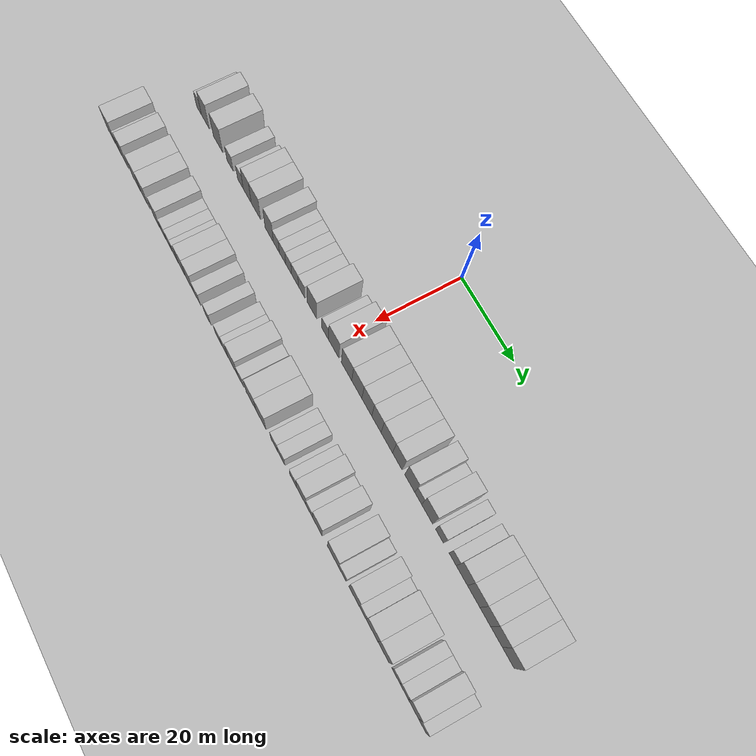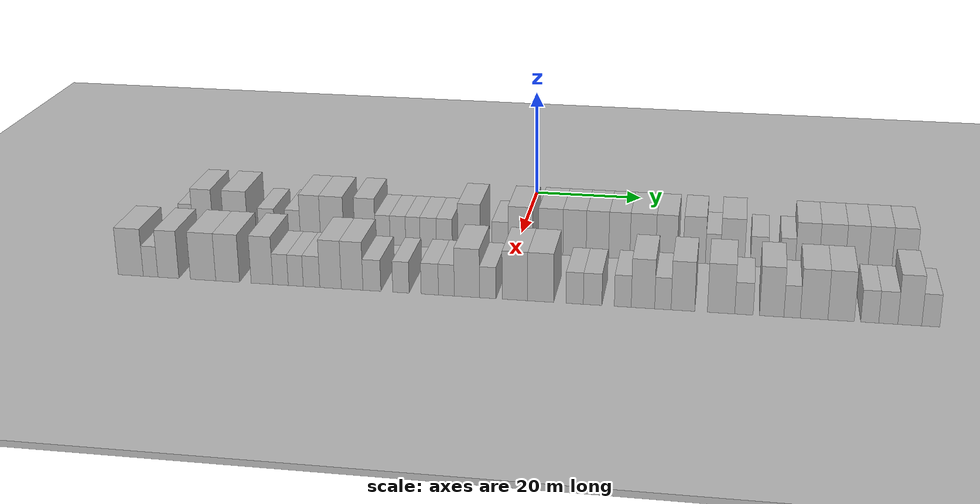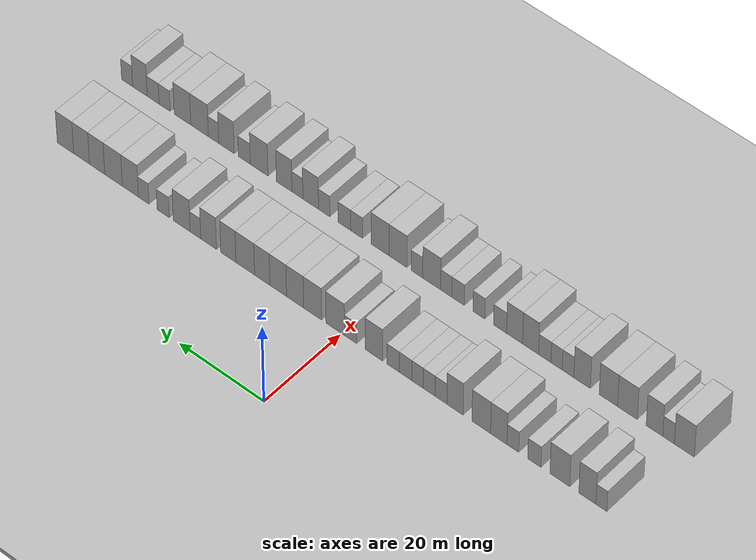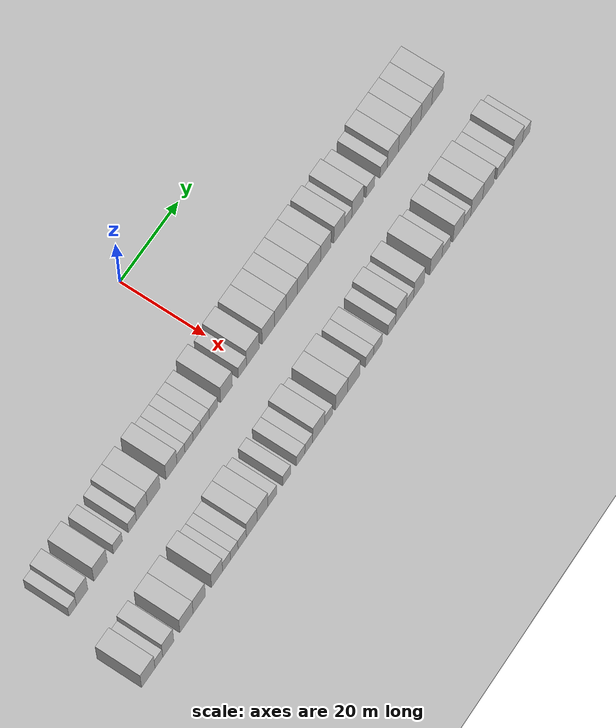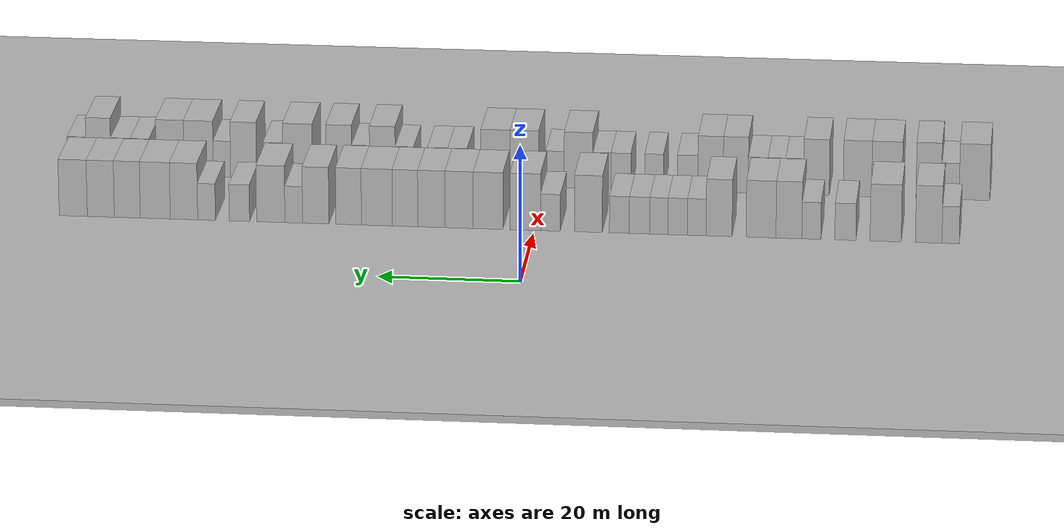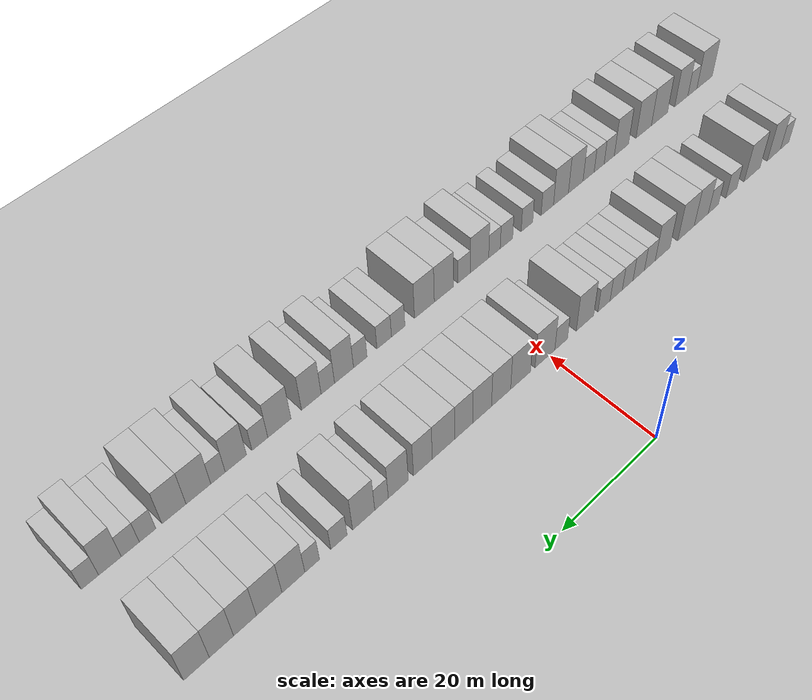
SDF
<sdf version="1.6">
 <world name="default">
  <include><name>ground_plane_1</name><uri>model://HANNAS_ground_plane</uri></include>
  <include>
   <name>ground_plane_2</name>
   <uri>model://HANNAS_ground_plane</uri>
   <pose>100 0 0  0 0 0</pose>
  </include>
  <model name="building_36">
   <static>1</static>
   <pose>25.0000 -59.1891 0 0.000000 0.000000 0.000000</pose>
   <link name="link">
    <pose>0 0 3.00 0 0 0</pose>
    <collision name="collision"><geometry><box><size>10.0000 2.4505 6.0000</size></box></geometry></collision>
    <visual name="visual">
     <cast_shadows>0</cast_shadows>
     <geometry><box><size>10.0000 2.4505 6.0000</size></box></geometry>
     <material>
      <script>
       <uri>model://HANNAS_wall/materials/scripts</uri>
       <uri>model://HANNAS_wall/materials/textures</uri>
       <name>vrc/HANNAS_wall</name>
      </script>
     </material>
    </visual>
   </link>
  </model>
  <model name="building_37">
   <static>1</static>
   <pose>25.0000 -56.0891 0 0.000000 0.000000 0.000000</pose>
   <link name="link">
    <pose>0 0 4.50 0 0 0</pose>
    <collision name="collision"><geometry><box><size>10.0000 3.7496 9.0000</size></box></geometry></collision>
    <visual name="visual">
     <cast_shadows>0</cast_shadows>
     <geometry><box><size>10.0000 3.7496 9.0000</size></box></geometry>
     <material>
      <script>
       <uri>model://HANNAS_wall/materials/scripts</uri>
       <uri>model://HANNAS_wall/materials/textures</uri>
       <name>vrc/HANNAS_wall</name>
      </script>
     </material>
    </visual>
   </link>
  </model>
  <model name="building_38">
   <static>1</static>
   <pose>25.0000 -50.0025 0 0.000000 0.000000 0.000000</pose>
   <link name="link">
    <pose>0 0 4.50 0 0 0</pose>
    <collision name="collision"><geometry><box><size>10.0000 4.4235 9.0000</size></box></geometry></collision>
    <visual name="visual">
     <cast_shadows>0</cast_shadows>
     <geometry><box><size>10.0000 4.4235 9.0000</size></box></geometry>
     <material>
      <script>
       <uri>model://HANNAS_wall/materials/scripts</uri>
       <uri>model://HANNAS_wall/materials/textures</uri>
       <name>vrc/HANNAS_wall</name>
      </script>
     </material>
    </visual>
   </link>
  </model>
  <model name="building_39">
   <static>1</static>
   <pose>25.0000 -44.3011 0 0.000000 0.000000 0.000000</pose>
   <link name="link">
    <pose>0 0 3.00 0 0 0</pose>
    <collision name="collision"><geometry><box><size>10.0000 2.9793 6.0000</size></box></geometry></collision>
    <visual name="visual">
     <cast_shadows>0</cast_shadows>
     <geometry><box><size>10.0000 2.9793 6.0000</size></box></geometry>
     <material>
      <script>
       <uri>model://HANNAS_wall/materials/scripts</uri>
       <uri>model://HANNAS_wall/materials/textures</uri>
       <name>vrc/HANNAS_wall</name>
      </script>
     </material>
    </visual>
   </link>
  </model>
  <model name="building_40">
   <static>1</static>
   <pose>25.0000 -39.4788 0 0.000000 0.000000 0.000000</pose>
   <link name="link">
    <pose>0 0 3.00 0 0 0</pose>
    <collision name="collision"><geometry><box><size>10.0000 2.6652 6.0000</size></box></geometry></collision>
    <visual name="visual">
     <cast_shadows>0</cast_shadows>
     <geometry><box><size>10.0000 2.6652 6.0000</size></box></geometry>
     <material>
      <script>
       <uri>model://HANNAS_wall/materials/scripts</uri>
       <uri>model://HANNAS_wall/materials/textures</uri>
       <name>vrc/HANNAS_wall</name>
      </script>
     </material>
    </visual>
   </link>
  </model>
  <model name="building_41">
   <static>1</static>
   <pose>25.0000 -36.3072 0 0.000000 0.000000 0.000000</pose>
   <link name="link">
    <pose>0 0 4.50 0 0 0</pose>
    <collision name="collision"><geometry><box><size>10.0000 3.6781 9.0000</size></box></geometry></collision>
    <visual name="visual">
     <cast_shadows>0</cast_shadows>
     <geometry><box><size>10.0000 3.6781 9.0000</size></box></geometry>
     <material>
      <script>
       <uri>model://HANNAS_wall/materials/scripts</uri>
       <uri>model://HANNAS_wall/materials/textures</uri>
       <name>vrc/HANNAS_wall</name>
      </script>
     </material>
    </visual>
   </link>
  </model>
  <model name="building_42">
   <static>1</static>
   <pose>25.0000 -32.3538 0 0.000000 0.000000 0.000000</pose>
   <link name="link">
    <pose>0 0 4.50 0 0 0</pose>
    <collision name="collision"><geometry><box><size>10.0000 4.2288 9.0000</size></box></geometry></collision>
    <visual name="visual">
     <cast_shadows>0</cast_shadows>
     <geometry><box><size>10.0000 4.2288 9.0000</size></box></geometry>
     <material>
      <script>
       <uri>model://HANNAS_wall/materials/scripts</uri>
       <uri>model://HANNAS_wall/materials/textures</uri>
       <name>vrc/HANNAS_wall</name>
      </script>
     </material>
    </visual>
   </link>
  </model>
  <model name="building_43">
   <static>1</static>
   <pose>25.0000 -26.3976 0 0.000000 0.000000 0.000000</pose>
   <link name="link">
    <pose>0 0 4.50 0 0 0</pose>
    <collision name="collision"><geometry><box><size>10.0000 3.6835 9.0000</size></box></geometry></collision>
    <visual name="visual">
     <cast_shadows>0</cast_shadows>
     <geometry><box><size>10.0000 3.6835 9.0000</size></box></geometry>
     <material>
      <script>
       <uri>model://HANNAS_wall/materials/scripts</uri>
       <uri>model://HANNAS_wall/materials/textures</uri>
       <name>vrc/HANNAS_wall</name>
      </script>
     </material>
    </visual>
   </link>
  </model>
  <model name="building_44">
   <static>1</static>
   <pose>25.0000 -23.2192 0 0.000000 0.000000 0.000000</pose>
   <link name="link">
    <pose>0 0 3.00 0 0 0</pose>
    <collision name="collision"><geometry><box><size>10.0000 2.6733 6.0000</size></box></geometry></collision>
    <visual name="visual">
     <cast_shadows>0</cast_shadows>
     <geometry><box><size>10.0000 2.6733 6.0000</size></box></geometry>
     <material>
      <script>
       <uri>model://HANNAS_wall/materials/scripts</uri>
       <uri>model://HANNAS_wall/materials/textures</uri>
       <name>vrc/HANNAS_wall</name>
      </script>
     </material>
    </visual>
   </link>
  </model>
  <model name="building_45">
   <static>1</static>
   <pose>25.0000 -20.4922 0 0.000000 0.000000 0.000000</pose>
   <link name="link">
    <pose>0 0 3.00 0 0 0</pose>
    <collision name="collision"><geometry><box><size>10.0000 2.7807 6.0000</size></box></geometry></collision>
    <visual name="visual">
     <cast_shadows>0</cast_shadows>
     <geometry><box><size>10.0000 2.7807 6.0000</size></box></geometry>
     <material>
      <script>
       <uri>model://HANNAS_wall/materials/scripts</uri>
       <uri>model://HANNAS_wall/materials/textures</uri>
       <name>vrc/HANNAS_wall</name>
      </script>
     </material>
    </visual>
   </link>
  </model>
  <model name="building_46">
   <static>1</static>
   <pose>25.0000 -17.8144 0 0.000000 0.000000 0.000000</pose>
   <link name="link">
    <pose>0 0 3.00 0 0 0</pose>
    <collision name="collision"><geometry><box><size>10.0000 2.5750 6.0000</size></box></geometry></collision>
    <visual name="visual">
     <cast_shadows>0</cast_shadows>
     <geometry><box><size>10.0000 2.5750 6.0000</size></box></geometry>
     <material>
      <script>
       <uri>model://HANNAS_wall/materials/scripts</uri>
       <uri>model://HANNAS_wall/materials/textures</uri>
       <name>vrc/HANNAS_wall</name>
      </script>
     </material>
    </visual>
   </link>
  </model>
  <model name="building_47">
   <static>1</static>
   <pose>25.0000 -15.0738 0 0.000000 0.000000 0.000000</pose>
   <link name="link">
    <pose>0 0 3.00 0 0 0</pose>
    <collision name="collision"><geometry><box><size>10.0000 2.9062 6.0000</size></box></geometry></collision>
    <visual name="visual">
     <cast_shadows>0</cast_shadows>
     <geometry><box><size>10.0000 2.9062 6.0000</size></box></geometry>
     <material>
      <script>
       <uri>model://HANNAS_wall/materials/scripts</uri>
       <uri>model://HANNAS_wall/materials/textures</uri>
       <name>vrc/HANNAS_wall</name>
      </script>
     </material>
    </visual>
   </link>
  </model>
  <model name="building_48">
   <static>1</static>
   <pose>25.0000 -12.2017 0 0.000000 0.000000 0.000000</pose>
   <link name="link">
    <pose>0 0 3.00 0 0 0</pose>
    <collision name="collision"><geometry><box><size>10.0000 2.8381 6.0000</size></box></geometry></collision>
    <visual name="visual">
     <cast_shadows>0</cast_shadows>
     <geometry><box><size>10.0000 2.8381 6.0000</size></box></geometry>
     <material>
      <script>
       <uri>model://HANNAS_wall/materials/scripts</uri>
       <uri>model://HANNAS_wall/materials/textures</uri>
       <name>vrc/HANNAS_wall</name>
      </script>
     </material>
    </visual>
   </link>
  </model>
  <model name="building_49">
   <static>1</static>
   <pose>25.0000 -7.7867 0 0.000000 0.000000 0.000000</pose>
   <link name="link">
    <pose>0 0 4.50 0 0 0</pose>
    <collision name="collision"><geometry><box><size>10.0000 3.9918 9.0000</size></box></geometry></collision>
    <visual name="visual">
     <cast_shadows>0</cast_shadows>
     <geometry><box><size>10.0000 3.9918 9.0000</size></box></geometry>
     <material>
      <script>
       <uri>model://HANNAS_wall/materials/scripts</uri>
       <uri>model://HANNAS_wall/materials/textures</uri>
       <name>vrc/HANNAS_wall</name>
      </script>
     </material>
    </visual>
   </link>
  </model>
  <model name="building_50">
   <static>1</static>
   <pose>25.0000 -2.3718 0 0.000000 0.000000 0.000000</pose>
   <link name="link">
    <pose>0 0 3.00 0 0 0</pose>
    <collision name="collision"><geometry><box><size>10.0000 2.8381 6.0000</size></box></geometry></collision>
    <visual name="visual">
     <cast_shadows>0</cast_shadows>
     <geometry><box><size>10.0000 2.8381 6.0000</size></box></geometry>
     <material>
      <script>
       <uri>model://HANNAS_wall/materials/scripts</uri>
       <uri>model://HANNAS_wall/materials/textures</uri>
       <name>vrc/HANNAS_wall</name>
      </script>
     </material>
    </visual>
   </link>
  </model>
  <model name="building_51">
   <static>1</static>
   <pose>25.0000 1.2269 0 0.000000 0.000000 0.000000</pose>
   <link name="link">
    <pose>0 0 4.50 0 0 0</pose>
    <collision name="collision"><geometry><box><size>10.0000 4.3593 9.0000</size></box></geometry></collision>
    <visual name="visual">
     <cast_shadows>0</cast_shadows>
     <geometry><box><size>10.0000 4.3593 9.0000</size></box></geometry>
     <material>
      <script>
       <uri>model://HANNAS_wall/materials/scripts</uri>
       <uri>model://HANNAS_wall/materials/textures</uri>
       <name>vrc/HANNAS_wall</name>
      </script>
     </material>
    </visual>
   </link>
  </model>
  <model name="building_52">
   <static>1</static>
   <pose>25.0000 6.5297 0 0.000000 0.000000 0.000000</pose>
   <link name="link">
    <pose>0 0 4.50 0 0 0</pose>
    <collision name="collision"><geometry><box><size>10.0000 4.2461 9.0000</size></box></geometry></collision>
    <visual name="visual">
     <cast_shadows>0</cast_shadows>
     <geometry><box><size>10.0000 4.2461 9.0000</size></box></geometry>
     <material>
      <script>
       <uri>model://HANNAS_wall/materials/scripts</uri>
       <uri>model://HANNAS_wall/materials/textures</uri>
       <name>vrc/HANNAS_wall</name>
      </script>
     </material>
    </visual>
   </link>
  </model>
  <model name="building_53">
   <static>1</static>
   <pose>25.0000 10.6682 0 0.000000 0.000000 0.000000</pose>
   <link name="link">
    <pose>0 0 4.50 0 0 0</pose>
    <collision name="collision"><geometry><box><size>10.0000 4.0310 9.0000</size></box></geometry></collision>
    <visual name="visual">
     <cast_shadows>0</cast_shadows>
     <geometry><box><size>10.0000 4.0310 9.0000</size></box></geometry>
     <material>
      <script>
       <uri>model://HANNAS_wall/materials/scripts</uri>
       <uri>model://HANNAS_wall/materials/textures</uri>
       <name>vrc/HANNAS_wall</name>
      </script>
     </material>
    </visual>
   </link>
  </model>
  <model name="building_54">
   <static>1</static>
   <pose>25.0000 14.6349 0 0.000000 0.000000 0.000000</pose>
   <link name="link">
    <pose>0 0 4.50 0 0 0</pose>
    <collision name="collision"><geometry><box><size>10.0000 3.9025 9.0000</size></box></geometry></collision>
    <visual name="visual">
     <cast_shadows>0</cast_shadows>
     <geometry><box><size>10.0000 3.9025 9.0000</size></box></geometry>
     <material>
      <script>
       <uri>model://HANNAS_wall/materials/scripts</uri>
       <uri>model://HANNAS_wall/materials/textures</uri>
       <name>vrc/HANNAS_wall</name>
      </script>
     </material>
    </visual>
   </link>
  </model>
  <model name="building_55">
   <static>1</static>
   <pose>25.0000 18.4154 0 0.000000 0.000000 0.000000</pose>
   <link name="link">
    <pose>0 0 4.50 0 0 0</pose>
    <collision name="collision"><geometry><box><size>10.0000 3.6584 9.0000</size></box></geometry></collision>
    <visual name="visual">
     <cast_shadows>0</cast_shadows>
     <geometry><box><size>10.0000 3.6584 9.0000</size></box></geometry>
     <material>
      <script>
       <uri>model://HANNAS_wall/materials/scripts</uri>
       <uri>model://HANNAS_wall/materials/textures</uri>
       <name>vrc/HANNAS_wall</name>
      </script>
     </material>
    </visual>
   </link>
  </model>
  <model name="building_56">
   <static>1</static>
   <pose>25.0000 22.4592 0 0.000000 0.000000 0.000000</pose>
   <link name="link">
    <pose>0 0 4.50 0 0 0</pose>
    <collision name="collision"><geometry><box><size>10.0000 4.4292 9.0000</size></box></geometry></collision>
    <visual name="visual">
     <cast_shadows>0</cast_shadows>
     <geometry><box><size>10.0000 4.4292 9.0000</size></box></geometry>
     <material>
      <script>
       <uri>model://HANNAS_wall/materials/scripts</uri>
       <uri>model://HANNAS_wall/materials/textures</uri>
       <name>vrc/HANNAS_wall</name>
      </script>
     </material>
    </visual>
   </link>
  </model>
  <model name="building_57">
   <static>1</static>
   <pose>25.0000 26.5005 0 0.000000 0.000000 0.000000</pose>
   <link name="link">
    <pose>0 0 4.50 0 0 0</pose>
    <collision name="collision"><geometry><box><size>10.0000 3.6536 9.0000</size></box></geometry></collision>
    <visual name="visual">
     <cast_shadows>0</cast_shadows>
     <geometry><box><size>10.0000 3.6536 9.0000</size></box></geometry>
     <material>
      <script>
       <uri>model://HANNAS_wall/materials/scripts</uri>
       <uri>model://HANNAS_wall/materials/textures</uri>
       <name>vrc/HANNAS_wall</name>
      </script>
     </material>
    </visual>
   </link>
  </model>
  <model name="building_58">
   <static>1</static>
   <pose>25.0000 31.2246 0 0.000000 0.000000 0.000000</pose>
   <link name="link">
    <pose>0 0 4.50 0 0 0</pose>
    <collision name="collision"><geometry><box><size>10.0000 3.7945 9.0000</size></box></geometry></collision>
    <visual name="visual">
     <cast_shadows>0</cast_shadows>
     <geometry><box><size>10.0000 3.7945 9.0000</size></box></geometry>
     <material>
      <script>
       <uri>model://HANNAS_wall/materials/scripts</uri>
       <uri>model://HANNAS_wall/materials/textures</uri>
       <name>vrc/HANNAS_wall</name>
      </script>
     </material>
    </visual>
   </link>
  </model>
  <model name="building_59">
   <static>1</static>
   <pose>25.0000 34.3887 0 0.000000 0.000000 0.000000</pose>
   <link name="link">
    <pose>0 0 3.00 0 0 0</pose>
    <collision name="collision"><geometry><box><size>10.0000 2.5337 6.0000</size></box></geometry></collision>
    <visual name="visual">
     <cast_shadows>0</cast_shadows>
     <geometry><box><size>10.0000 2.5337 6.0000</size></box></geometry>
     <material>
      <script>
       <uri>model://HANNAS_wall/materials/scripts</uri>
       <uri>model://HANNAS_wall/materials/textures</uri>
       <name>vrc/HANNAS_wall</name>
      </script>
     </material>
    </visual>
   </link>
  </model>
  <model name="building_60">
   <static>1</static>
   <pose>25.0000 37.6948 0 0.000000 0.000000 0.000000</pose>
   <link name="link">
    <pose>0 0 4.50 0 0 0</pose>
    <collision name="collision"><geometry><box><size>10.0000 4.0787 9.0000</size></box></geometry></collision>
    <visual name="visual">
     <cast_shadows>0</cast_shadows>
     <geometry><box><size>10.0000 4.0787 9.0000</size></box></geometry>
     <material>
      <script>
       <uri>model://HANNAS_wall/materials/scripts</uri>
       <uri>model://HANNAS_wall/materials/textures</uri>
       <name>vrc/HANNAS_wall</name>
      </script>
     </material>
    </visual>
   </link>
  </model>
  <model name="building_61">
   <static>1</static>
   <pose>25.0000 42.1976 0 0.000000 0.000000 0.000000</pose>
   <link name="link">
    <pose>0 0 3.00 0 0 0</pose>
    <collision name="collision"><geometry><box><size>10.0000 2.9268 6.0000</size></box></geometry></collision>
    <visual name="visual">
     <cast_shadows>0</cast_shadows>
     <geometry><box><size>10.0000 2.9268 6.0000</size></box></geometry>
     <material>
      <script>
       <uri>model://HANNAS_wall/materials/scripts</uri>
       <uri>model://HANNAS_wall/materials/textures</uri>
       <name>vrc/HANNAS_wall</name>
      </script>
     </material>
    </visual>
   </link>
  </model>
  <model name="building_62">
   <static>1</static>
   <pose>25.0000 46.9403 0 0.000000 0.000000 0.000000</pose>
   <link name="link">
    <pose>0 0 3.00 0 0 0</pose>
    <collision name="collision"><geometry><box><size>10.0000 2.5586 6.0000</size></box></geometry></collision>
    <visual name="visual">
     <cast_shadows>0</cast_shadows>
     <geometry><box><size>10.0000 2.5586 6.0000</size></box></geometry>
     <material>
      <script>
       <uri>model://HANNAS_wall/materials/scripts</uri>
       <uri>model://HANNAS_wall/materials/textures</uri>
       <name>vrc/HANNAS_wall</name>
      </script>
     </material>
    </visual>
   </link>
  </model>
  <model name="building_63">
   <static>1</static>
   <pose>25.0000 50.1913 0 0.000000 0.000000 0.000000</pose>
   <link name="link">
    <pose>0 0 4.50 0 0 0</pose>
    <collision name="collision"><geometry><box><size>10.0000 3.9434 9.0000</size></box></geometry></collision>
    <visual name="visual">
     <cast_shadows>0</cast_shadows>
     <geometry><box><size>10.0000 3.9434 9.0000</size></box></geometry>
     <material>
      <script>
       <uri>model://HANNAS_wall/materials/scripts</uri>
       <uri>model://HANNAS_wall/materials/textures</uri>
       <name>vrc/HANNAS_wall</name>
      </script>
     </material>
    </visual>
   </link>
  </model>
  <model name="building_64">
   <static>1</static>
   <pose>25.0000 54.3301 0 0.000000 0.000000 0.000000</pose>
   <link name="link">
    <pose>0 0 4.50 0 0 0</pose>
    <collision name="collision"><geometry><box><size>10.0000 4.3342 9.0000</size></box></geometry></collision>
    <visual name="visual">
     <cast_shadows>0</cast_shadows>
     <geometry><box><size>10.0000 4.3342 9.0000</size></box></geometry>
     <material>
      <script>
       <uri>model://HANNAS_wall/materials/scripts</uri>
       <uri>model://HANNAS_wall/materials/textures</uri>
       <name>vrc/HANNAS_wall</name>
      </script>
     </material>
    </visual>
   </link>
  </model>
  <model name="building_65">
   <static>1</static>
   <pose>25.0000 58.3656 0 0.000000 0.000000 0.000000</pose>
   <link name="link">
    <pose>0 0 4.50 0 0 0</pose>
    <collision name="collision"><geometry><box><size>10.0000 3.7368 9.0000</size></box></geometry></collision>
    <visual name="visual">
     <cast_shadows>0</cast_shadows>
     <geometry><box><size>10.0000 3.7368 9.0000</size></box></geometry>
     <material>
      <script>
       <uri>model://HANNAS_wall/materials/scripts</uri>
       <uri>model://HANNAS_wall/materials/textures</uri>
       <name>vrc/HANNAS_wall</name>
      </script>
     </material>
    </visual>
   </link>
  </model>
  <model name="building_66">
   <static>1</static>
   <pose>25.0000 62.1907 0 0.000000 0.000000 0.000000</pose>
   <link name="link">
    <pose>0 0 4.50 0 0 0</pose>
    <collision name="collision"><geometry><box><size>10.0000 3.9134 9.0000</size></box></geometry></collision>
    <visual name="visual">
     <cast_shadows>0</cast_shadows>
     <geometry><box><size>10.0000 3.9134 9.0000</size></box></geometry>
     <material>
      <script>
       <uri>model://HANNAS_wall/materials/scripts</uri>
       <uri>model://HANNAS_wall/materials/textures</uri>
       <name>vrc/HANNAS_wall</name>
      </script>
     </material>
    </visual>
   </link>
  </model>
  <model name="building_67">
   <static>1</static>
   <pose>25.0000 66.1768 0 0.000000 0.000000 0.000000</pose>
   <link name="link">
    <pose>0 0 4.50 0 0 0</pose>
    <collision name="collision"><geometry><box><size>10.0000 4.0587 9.0000</size></box></geometry></collision>
    <visual name="visual">
     <cast_shadows>0</cast_shadows>
     <geometry><box><size>10.0000 4.0587 9.0000</size></box></geometry>
     <material>
      <script>
       <uri>model://HANNAS_wall/materials/scripts</uri>
       <uri>model://HANNAS_wall/materials/textures</uri>
       <name>vrc/HANNAS_wall</name>
      </script>
     </material>
    </visual>
   </link>
  </model>
  <model name="building_133">
   <static>1</static>
   <pose>44.0000 -61.9923 0 0.000000 0.000000 0.000000</pose>
   <link name="link">
    <pose>0 0 4.50 0 0 0</pose>
    <collision name="collision"><geometry><box><size>10.0000 4.4124 9.0000</size></box></geometry></collision>
    <visual name="visual">
     <cast_shadows>0</cast_shadows>
     <geometry><box><size>10.0000 4.4124 9.0000</size></box></geometry>
     <material>
      <script>
       <uri>model://HANNAS_wall/materials/scripts</uri>
       <uri>model://HANNAS_wall/materials/textures</uri>
       <name>vrc/HANNAS_wall</name>
      </script>
     </material>
    </visual>
   </link>
  </model>
  <model name="building_134">
   <static>1</static>
   <pose>44.0000 -58.5076 0 0.000000 0.000000 0.000000</pose>
   <link name="link">
    <pose>0 0 3.00 0 0 0</pose>
    <collision name="collision"><geometry><box><size>10.0000 2.5570 6.0000</size></box></geometry></collision>
    <visual name="visual">
     <cast_shadows>0</cast_shadows>
     <geometry><box><size>10.0000 2.5570 6.0000</size></box></geometry>
     <material>
      <script>
       <uri>model://HANNAS_wall/materials/scripts</uri>
       <uri>model://HANNAS_wall/materials/textures</uri>
       <name>vrc/HANNAS_wall</name>
      </script>
     </material>
    </visual>
   </link>
  </model>
  <model name="building_135">
   <static>1</static>
   <pose>44.0000 -55.3981 0 0.000000 0.000000 0.000000</pose>
   <link name="link">
    <pose>0 0 4.50 0 0 0</pose>
    <collision name="collision"><geometry><box><size>10.0000 3.6620 9.0000</size></box></geometry></collision>
    <visual name="visual">
     <cast_shadows>0</cast_shadows>
     <geometry><box><size>10.0000 3.6620 9.0000</size></box></geometry>
     <material>
      <script>
       <uri>model://HANNAS_wall/materials/scripts</uri>
       <uri>model://HANNAS_wall/materials/textures</uri>
       <name>vrc/HANNAS_wall</name>
      </script>
     </material>
    </visual>
   </link>
  </model>
  <model name="building_136">
   <static>1</static>
   <pose>44.0000 -49.3692 0 0.000000 0.000000 0.000000</pose>
   <link name="link">
    <pose>0 0 4.50 0 0 0</pose>
    <collision name="collision"><geometry><box><size>10.0000 4.3958 9.0000</size></box></geometry></collision>
    <visual name="visual">
     <cast_shadows>0</cast_shadows>
     <geometry><box><size>10.0000 4.3958 9.0000</size></box></geometry>
     <material>
      <script>
       <uri>model://HANNAS_wall/materials/scripts</uri>
       <uri>model://HANNAS_wall/materials/textures</uri>
       <name>vrc/HANNAS_wall</name>
      </script>
     </material>
    </visual>
   </link>
  </model>
  <model name="building_137">
   <static>1</static>
   <pose>44.0000 -45.1158 0 0.000000 0.000000 0.000000</pose>
   <link name="link">
    <pose>0 0 4.50 0 0 0</pose>
    <collision name="collision"><geometry><box><size>10.0000 4.1108 9.0000</size></box></geometry></collision>
    <visual name="visual">
     <cast_shadows>0</cast_shadows>
     <geometry><box><size>10.0000 4.1108 9.0000</size></box></geometry>
     <material>
      <script>
       <uri>model://HANNAS_wall/materials/scripts</uri>
       <uri>model://HANNAS_wall/materials/textures</uri>
       <name>vrc/HANNAS_wall</name>
      </script>
     </material>
    </visual>
   </link>
  </model>
  <model name="building_138">
   <static>1</static>
   <pose>44.0000 -39.1986 0 0.000000 0.000000 0.000000</pose>
   <link name="link">
    <pose>0 0 4.50 0 0 0</pose>
    <collision name="collision"><geometry><box><size>10.0000 3.7237 9.0000</size></box></geometry></collision>
    <visual name="visual">
     <cast_shadows>0</cast_shadows>
     <geometry><box><size>10.0000 3.7237 9.0000</size></box></geometry>
     <material>
      <script>
       <uri>model://HANNAS_wall/materials/scripts</uri>
       <uri>model://HANNAS_wall/materials/textures</uri>
       <name>vrc/HANNAS_wall</name>
      </script>
     </material>
    </visual>
   </link>
  </model>
  <model name="building_139">
   <static>1</static>
   <pose>44.0000 -36.0222 0 0.000000 0.000000 0.000000</pose>
   <link name="link">
    <pose>0 0 3.00 0 0 0</pose>
    <collision name="collision"><geometry><box><size>10.0000 2.6290 6.0000</size></box></geometry></collision>
    <visual name="visual">
     <cast_shadows>0</cast_shadows>
     <geometry><box><size>10.0000 2.6290 6.0000</size></box></geometry>
     <material>
      <script>
       <uri>model://HANNAS_wall/materials/scripts</uri>
       <uri>model://HANNAS_wall/materials/textures</uri>
       <name>vrc/HANNAS_wall</name>
      </script>
     </material>
    </visual>
   </link>
  </model>
  <model name="building_140">
   <static>1</static>
   <pose>44.0000 -33.4312 0 0.000000 0.000000 0.000000</pose>
   <link name="link">
    <pose>0 0 3.00 0 0 0</pose>
    <collision name="collision"><geometry><box><size>10.0000 2.5530 6.0000</size></box></geometry></collision>
    <visual name="visual">
     <cast_shadows>0</cast_shadows>
     <geometry><box><size>10.0000 2.5530 6.0000</size></box></geometry>
     <material>
      <script>
       <uri>model://HANNAS_wall/materials/scripts</uri>
       <uri>model://HANNAS_wall/materials/textures</uri>
       <name>vrc/HANNAS_wall</name>
      </script>
     </material>
    </visual>
   </link>
  </model>
  <model name="building_141">
   <static>1</static>
   <pose>44.0000 -30.7478 0 0.000000 0.000000 0.000000</pose>
   <link name="link">
    <pose>0 0 3.00 0 0 0</pose>
    <collision name="collision"><geometry><box><size>10.0000 2.8138 6.0000</size></box></geometry></collision>
    <visual name="visual">
     <cast_shadows>0</cast_shadows>
     <geometry><box><size>10.0000 2.8138 6.0000</size></box></geometry>
     <material>
      <script>
       <uri>model://HANNAS_wall/materials/scripts</uri>
       <uri>model://HANNAS_wall/materials/textures</uri>
       <name>vrc/HANNAS_wall</name>
      </script>
     </material>
    </visual>
   </link>
  </model>
  <model name="building_142">
   <static>1</static>
   <pose>44.0000 -27.5263 0 0.000000 0.000000 0.000000</pose>
   <link name="link">
    <pose>0 0 4.50 0 0 0</pose>
    <collision name="collision"><geometry><box><size>10.0000 3.6293 9.0000</size></box></geometry></collision>
    <visual name="visual">
     <cast_shadows>0</cast_shadows>
     <geometry><box><size>10.0000 3.6293 9.0000</size></box></geometry>
     <material>
      <script>
       <uri>model://HANNAS_wall/materials/scripts</uri>
       <uri>model://HANNAS_wall/materials/textures</uri>
       <name>vrc/HANNAS_wall</name>
      </script>
     </material>
    </visual>
   </link>
  </model>
  <model name="building_143">
   <static>1</static>
   <pose>44.0000 -23.8797 0 0.000000 0.000000 0.000000</pose>
   <link name="link">
    <pose>0 0 4.50 0 0 0</pose>
    <collision name="collision"><geometry><box><size>10.0000 3.6639 9.0000</size></box></geometry></collision>
    <visual name="visual">
     <cast_shadows>0</cast_shadows>
     <geometry><box><size>10.0000 3.6639 9.0000</size></box></geometry>
     <material>
      <script>
       <uri>model://HANNAS_wall/materials/scripts</uri>
       <uri>model://HANNAS_wall/materials/textures</uri>
       <name>vrc/HANNAS_wall</name>
      </script>
     </material>
    </visual>
   </link>
  </model>
  <model name="building_144">
   <static>1</static>
   <pose>44.0000 -20.5479 0 0.000000 0.000000 0.000000</pose>
   <link name="link">
    <pose>0 0 3.00 0 0 0</pose>
    <collision name="collision"><geometry><box><size>10.0000 2.9996 6.0000</size></box></geometry></collision>
    <visual name="visual">
     <cast_shadows>0</cast_shadows>
     <geometry><box><size>10.0000 2.9996 6.0000</size></box></geometry>
     <material>
      <script>
       <uri>model://HANNAS_wall/materials/scripts</uri>
       <uri>model://HANNAS_wall/materials/textures</uri>
       <name>vrc/HANNAS_wall</name>
      </script>
     </material>
    </visual>
   </link>
  </model>
  <model name="building_145">
   <static>1</static>
   <pose>44.0000 -15.6844 0 0.000000 0.000000 0.000000</pose>
   <link name="link">
    <pose>0 0 3.00 0 0 0</pose>
    <collision name="collision"><geometry><box><size>10.0000 2.7273 6.0000</size></box></geometry></collision>
    <visual name="visual">
     <cast_shadows>0</cast_shadows>
     <geometry><box><size>10.0000 2.7273 6.0000</size></box></geometry>
     <material>
      <script>
       <uri>model://HANNAS_wall/materials/scripts</uri>
       <uri>model://HANNAS_wall/materials/textures</uri>
       <name>vrc/HANNAS_wall</name>
      </script>
     </material>
    </visual>
   </link>
  </model>
  <model name="building_146">
   <static>1</static>
   <pose>44.0000 -10.8806 0 0.000000 0.000000 0.000000</pose>
   <link name="link">
    <pose>0 0 3.00 0 0 0</pose>
    <collision name="collision"><geometry><box><size>10.0000 2.8803 6.0000</size></box></geometry></collision>
    <visual name="visual">
     <cast_shadows>0</cast_shadows>
     <geometry><box><size>10.0000 2.8803 6.0000</size></box></geometry>
     <material>
      <script>
       <uri>model://HANNAS_wall/materials/scripts</uri>
       <uri>model://HANNAS_wall/materials/textures</uri>
       <name>vrc/HANNAS_wall</name>
      </script>
     </material>
    </visual>
   </link>
  </model>
  <model name="building_147">
   <static>1</static>
   <pose>44.0000 -8.1251 0 0.000000 0.000000 0.000000</pose>
   <link name="link">
    <pose>0 0 3.00 0 0 0</pose>
    <collision name="collision"><geometry><box><size>10.0000 2.6308 6.0000</size></box></geometry></collision>
    <visual name="visual">
     <cast_shadows>0</cast_shadows>
     <geometry><box><size>10.0000 2.6308 6.0000</size></box></geometry>
     <material>
      <script>
       <uri>model://HANNAS_wall/materials/scripts</uri>
       <uri>model://HANNAS_wall/materials/textures</uri>
       <name>vrc/HANNAS_wall</name>
      </script>
     </material>
    </visual>
   </link>
  </model>
  <model name="building_148">
   <static>1</static>
   <pose>44.0000 -4.7288 0 0.000000 0.000000 0.000000</pose>
   <link name="link">
    <pose>0 0 4.50 0 0 0</pose>
    <collision name="collision"><geometry><box><size>10.0000 4.1620 9.0000</size></box></geometry></collision>
    <visual name="visual">
     <cast_shadows>0</cast_shadows>
     <geometry><box><size>10.0000 4.1620 9.0000</size></box></geometry>
     <material>
      <script>
       <uri>model://HANNAS_wall/materials/scripts</uri>
       <uri>model://HANNAS_wall/materials/textures</uri>
       <name>vrc/HANNAS_wall</name>
      </script>
     </material>
    </visual>
   </link>
  </model>
  <model name="building_149">
   <static>1</static>
   <pose>44.0000 -1.2908 0 0.000000 0.000000 0.000000</pose>
   <link name="link">
    <pose>0 0 3.00 0 0 0</pose>
    <collision name="collision"><geometry><box><size>10.0000 2.7140 6.0000</size></box></geometry></collision>
    <visual name="visual">
     <cast_shadows>0</cast_shadows>
     <geometry><box><size>10.0000 2.7140 6.0000</size></box></geometry>
     <material>
      <script>
       <uri>model://HANNAS_wall/materials/scripts</uri>
       <uri>model://HANNAS_wall/materials/textures</uri>
       <name>vrc/HANNAS_wall</name>
      </script>
     </material>
    </visual>
   </link>
  </model>
  <model name="building_150">
   <static>1</static>
   <pose>44.0000 3.1504 0 0.000000 0.000000 0.000000</pose>
   <link name="link">
    <pose>0 0 4.50 0 0 0</pose>
    <collision name="collision"><geometry><box><size>10.0000 4.1684 9.0000</size></box></geometry></collision>
    <visual name="visual">
     <cast_shadows>0</cast_shadows>
     <geometry><box><size>10.0000 4.1684 9.0000</size></box></geometry>
     <material>
      <script>
       <uri>model://HANNAS_wall/materials/scripts</uri>
       <uri>model://HANNAS_wall/materials/textures</uri>
       <name>vrc/HANNAS_wall</name>
      </script>
     </material>
    </visual>
   </link>
  </model>
  <model name="building_151">
   <static>1</static>
   <pose>44.0000 7.3517 0 0.000000 0.000000 0.000000</pose>
   <link name="link">
    <pose>0 0 4.50 0 0 0</pose>
    <collision name="collision"><geometry><box><size>10.0000 4.2342 9.0000</size></box></geometry></collision>
    <visual name="visual">
     <cast_shadows>0</cast_shadows>
     <geometry><box><size>10.0000 4.2342 9.0000</size></box></geometry>
     <material>
      <script>
       <uri>model://HANNAS_wall/materials/scripts</uri>
       <uri>model://HANNAS_wall/materials/textures</uri>
       <name>vrc/HANNAS_wall</name>
      </script>
     </material>
    </visual>
   </link>
  </model>
  <model name="building_152">
   <static>1</static>
   <pose>44.0000 12.8702 0 0.000000 0.000000 0.000000</pose>
   <link name="link">
    <pose>0 0 3.00 0 0 0</pose>
    <collision name="collision"><geometry><box><size>10.0000 2.8028 6.0000</size></box></geometry></collision>
    <visual name="visual">
     <cast_shadows>0</cast_shadows>
     <geometry><box><size>10.0000 2.8028 6.0000</size></box></geometry>
     <material>
      <script>
       <uri>model://HANNAS_wall/materials/scripts</uri>
       <uri>model://HANNAS_wall/materials/textures</uri>
       <name>vrc/HANNAS_wall</name>
      </script>
     </material>
    </visual>
   </link>
  </model>
  <model name="building_153">
   <static>1</static>
   <pose>44.0000 15.7662 0 0.000000 0.000000 0.000000</pose>
   <link name="link">
    <pose>0 0 3.00 0 0 0</pose>
    <collision name="collision"><geometry><box><size>10.0000 2.9891 6.0000</size></box></geometry></collision>
    <visual name="visual">
     <cast_shadows>0</cast_shadows>
     <geometry><box><size>10.0000 2.9891 6.0000</size></box></geometry>
     <material>
      <script>
       <uri>model://HANNAS_wall/materials/scripts</uri>
       <uri>model://HANNAS_wall/materials/textures</uri>
       <name>vrc/HANNAS_wall</name>
      </script>
     </material>
    </visual>
   </link>
  </model>
  <model name="building_154">
   <static>1</static>
   <pose>44.0000 20.6160 0 0.000000 0.000000 0.000000</pose>
   <link name="link">
    <pose>0 0 3.00 0 0 0</pose>
    <collision name="collision"><geometry><box><size>10.0000 2.7106 6.0000</size></box></geometry></collision>
    <visual name="visual">
     <cast_shadows>0</cast_shadows>
     <geometry><box><size>10.0000 2.7106 6.0000</size></box></geometry>
     <material>
      <script>
       <uri>model://HANNAS_wall/materials/scripts</uri>
       <uri>model://HANNAS_wall/materials/textures</uri>
       <name>vrc/HANNAS_wall</name>
      </script>
     </material>
    </visual>
   </link>
  </model>
  <model name="building_155">
   <static>1</static>
   <pose>44.0000 23.8442 0 0.000000 0.000000 0.000000</pose>
   <link name="link">
    <pose>0 0 4.50 0 0 0</pose>
    <collision name="collision"><geometry><box><size>10.0000 3.7457 9.0000</size></box></geometry></collision>
    <visual name="visual">
     <cast_shadows>0</cast_shadows>
     <geometry><box><size>10.0000 3.7457 9.0000</size></box></geometry>
     <material>
      <script>
       <uri>model://HANNAS_wall/materials/scripts</uri>
       <uri>model://HANNAS_wall/materials/textures</uri>
       <name>vrc/HANNAS_wall</name>
      </script>
     </material>
    </visual>
   </link>
  </model>
  <model name="building_156">
   <static>1</static>
   <pose>44.0000 27.0227 0 0.000000 0.000000 0.000000</pose>
   <link name="link">
    <pose>0 0 3.00 0 0 0</pose>
    <collision name="collision"><geometry><box><size>10.0000 2.6112 6.0000</size></box></geometry></collision>
    <visual name="visual">
     <cast_shadows>0</cast_shadows>
     <geometry><box><size>10.0000 2.6112 6.0000</size></box></geometry>
     <material>
      <script>
       <uri>model://HANNAS_wall/materials/scripts</uri>
       <uri>model://HANNAS_wall/materials/textures</uri>
       <name>vrc/HANNAS_wall</name>
      </script>
     </material>
    </visual>
   </link>
  </model>
  <model name="building_157">
   <static>1</static>
   <pose>44.0000 30.2051 0 0.000000 0.000000 0.000000</pose>
   <link name="link">
    <pose>0 0 4.50 0 0 0</pose>
    <collision name="collision"><geometry><box><size>10.0000 3.7537 9.0000</size></box></geometry></collision>
    <visual name="visual">
     <cast_shadows>0</cast_shadows>
     <geometry><box><size>10.0000 3.7537 9.0000</size></box></geometry>
     <material>
      <script>
       <uri>model://HANNAS_wall/materials/scripts</uri>
       <uri>model://HANNAS_wall/materials/textures</uri>
       <name>vrc/HANNAS_wall</name>
      </script>
     </material>
    </visual>
   </link>
  </model>
  <model name="building_158">
   <static>1</static>
   <pose>44.0000 36.2376 0 0.000000 0.000000 0.000000</pose>
   <link name="link">
    <pose>0 0 4.50 0 0 0</pose>
    <collision name="collision"><geometry><box><size>10.0000 4.3113 9.0000</size></box></geometry></collision>
    <visual name="visual">
     <cast_shadows>0</cast_shadows>
     <geometry><box><size>10.0000 4.3113 9.0000</size></box></geometry>
     <material>
      <script>
       <uri>model://HANNAS_wall/materials/scripts</uri>
       <uri>model://HANNAS_wall/materials/textures</uri>
       <name>vrc/HANNAS_wall</name>
      </script>
     </material>
    </visual>
   </link>
  </model>
  <model name="building_159">
   <static>1</static>
   <pose>44.0000 39.8344 0 0.000000 0.000000 0.000000</pose>
   <link name="link">
    <pose>0 0 3.00 0 0 0</pose>
    <collision name="collision"><geometry><box><size>10.0000 2.8822 6.0000</size></box></geometry></collision>
    <visual name="visual">
     <cast_shadows>0</cast_shadows>
     <geometry><box><size>10.0000 2.8822 6.0000</size></box></geometry>
     <material>
      <script>
       <uri>model://HANNAS_wall/materials/scripts</uri>
       <uri>model://HANNAS_wall/materials/textures</uri>
       <name>vrc/HANNAS_wall</name>
      </script>
     </material>
    </visual>
   </link>
  </model>
  <model name="building_160">
   <static>1</static>
   <pose>44.0000 44.1730 0 0.000000 0.000000 0.000000</pose>
   <link name="link">
    <pose>0 0 4.50 0 0 0</pose>
    <collision name="collision"><geometry><box><size>10.0000 3.7951 9.0000</size></box></geometry></collision>
    <visual name="visual">
     <cast_shadows>0</cast_shadows>
     <geometry><box><size>10.0000 3.7951 9.0000</size></box></geometry>
     <material>
      <script>
       <uri>model://HANNAS_wall/materials/scripts</uri>
       <uri>model://HANNAS_wall/materials/textures</uri>
       <name>vrc/HANNAS_wall</name>
      </script>
     </material>
    </visual>
   </link>
  </model>
  <model name="building_161">
   <static>1</static>
   <pose>44.0000 47.3450 0 0.000000 0.000000 0.000000</pose>
   <link name="link">
    <pose>0 0 3.00 0 0 0</pose>
    <collision name="collision"><geometry><box><size>10.0000 2.5489 6.0000</size></box></geometry></collision>
    <visual name="visual">
     <cast_shadows>0</cast_shadows>
     <geometry><box><size>10.0000 2.5489 6.0000</size></box></geometry>
     <material>
      <script>
       <uri>model://HANNAS_wall/materials/scripts</uri>
       <uri>model://HANNAS_wall/materials/textures</uri>
       <name>vrc/HANNAS_wall</name>
      </script>
     </material>
    </visual>
   </link>
  </model>
  <model name="building_162">
   <static>1</static>
   <pose>44.0000 50.7619 0 0.000000 0.000000 0.000000</pose>
   <link name="link">
    <pose>0 0 4.50 0 0 0</pose>
    <collision name="collision"><geometry><box><size>10.0000 4.2847 9.0000</size></box></geometry></collision>
    <visual name="visual">
     <cast_shadows>0</cast_shadows>
     <geometry><box><size>10.0000 4.2847 9.0000</size></box></geometry>
     <material>
      <script>
       <uri>model://HANNAS_wall/materials/scripts</uri>
       <uri>model://HANNAS_wall/materials/textures</uri>
       <name>vrc/HANNAS_wall</name>
      </script>
     </material>
    </visual>
   </link>
  </model>
  <model name="building_163">
   <static>1</static>
   <pose>44.0000 54.9464 0 0.000000 0.000000 0.000000</pose>
   <link name="link">
    <pose>0 0 4.50 0 0 0</pose>
    <collision name="collision"><geometry><box><size>10.0000 4.0844 9.0000</size></box></geometry></collision>
    <visual name="visual">
     <cast_shadows>0</cast_shadows>
     <geometry><box><size>10.0000 4.0844 9.0000</size></box></geometry>
     <material>
      <script>
       <uri>model://HANNAS_wall/materials/scripts</uri>
       <uri>model://HANNAS_wall/materials/textures</uri>
       <name>vrc/HANNAS_wall</name>
      </script>
     </material>
    </visual>
   </link>
  </model>
  <model name="building_164">
   <static>1</static>
   <pose>44.0000 59.3600 0 0.000000 0.000000 0.000000</pose>
   <link name="link">
    <pose>0 0 3.00 0 0 0</pose>
    <collision name="collision"><geometry><box><size>10.0000 2.7429 6.0000</size></box></geometry></collision>
    <visual name="visual">
     <cast_shadows>0</cast_shadows>
     <geometry><box><size>10.0000 2.7429 6.0000</size></box></geometry>
     <material>
      <script>
       <uri>model://HANNAS_wall/materials/scripts</uri>
       <uri>model://HANNAS_wall/materials/textures</uri>
       <name>vrc/HANNAS_wall</name>
      </script>
     </material>
    </visual>
   </link>
  </model>
  <model name="building_165">
   <static>1</static>
   <pose>44.0000 62.1881 0 0.000000 0.000000 0.000000</pose>
   <link name="link">
    <pose>0 0 3.00 0 0 0</pose>
    <collision name="collision"><geometry><box><size>10.0000 2.9134 6.0000</size></box></geometry></collision>
    <visual name="visual">
     <cast_shadows>0</cast_shadows>
     <geometry><box><size>10.0000 2.9134 6.0000</size></box></geometry>
     <material>
      <script>
       <uri>model://HANNAS_wall/materials/scripts</uri>
       <uri>model://HANNAS_wall/materials/textures</uri>
       <name>vrc/HANNAS_wall</name>
      </script>
     </material>
    </visual>
   </link>
  </model>
  <model name="building_166">
   <static>1</static>
   <pose>44.0000 65.4675 0 0.000000 0.000000 0.000000</pose>
   <link name="link">
    <pose>0 0 4.50 0 0 0</pose>
    <collision name="collision"><geometry><box><size>10.0000 3.6453 9.0000</size></box></geometry></collision>
    <visual name="visual">
     <cast_shadows>0</cast_shadows>
     <geometry><box><size>10.0000 3.6453 9.0000</size></box></geometry>
     <material>
      <script>
       <uri>model://HANNAS_wall/materials/scripts</uri>
       <uri>model://HANNAS_wall/materials/textures</uri>
       <name>vrc/HANNAS_wall</name>
      </script>
     </material>
    </visual>
   </link>
  </model>
  <model name="building_167">
   <static>1</static>
   <pose>44.0000 68.6618 0 0.000000 0.000000 0.000000</pose>
   <link name="link">
    <pose>0 0 3.00 0 0 0</pose>
    <collision name="collision"><geometry><box><size>10.0000 2.7434 6.0000</size></box></geometry></collision>
    <visual name="visual">
     <cast_shadows>0</cast_shadows>
     <geometry><box><size>10.0000 2.7434 6.0000</size></box></geometry>
     <material>
      <script>
       <uri>model://HANNAS_wall/materials/scripts</uri>
       <uri>model://HANNAS_wall/materials/textures</uri>
       <name>vrc/HANNAS_wall</name>
      </script>
     </material>
    </visual>
   </link>
  </model>
 </world>
</sdf>
